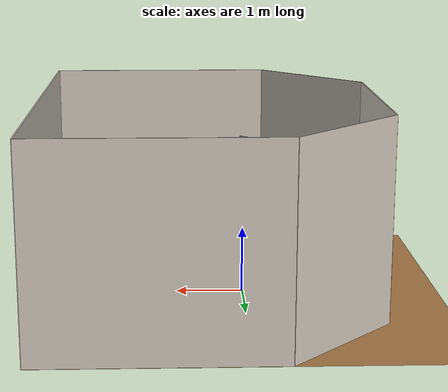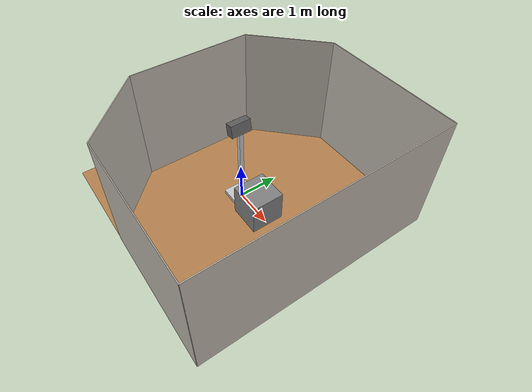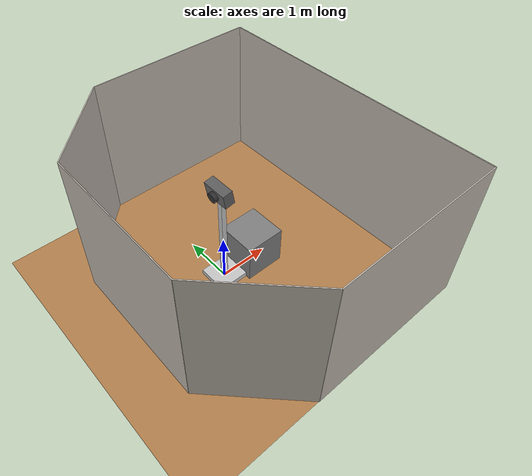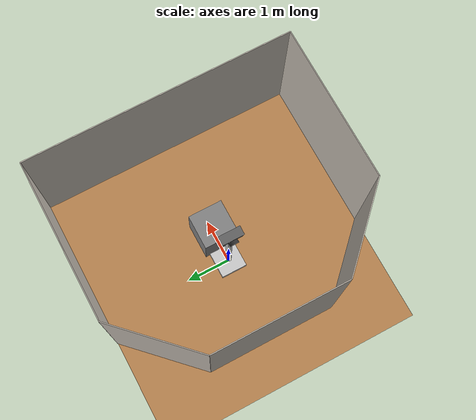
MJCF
<mujoco model="table_arena">
  <asset>
    <texture builtin="gradient" height="256" rgb1=".9 .9 1." rgb2=".2 .3 .4" type="skybox" width="256"/>
    <texture file="../textures/wood-tiles.png" type="2d" name="texplane"/>
    <material name="floorplane" reflectance="0.01" shininess="0.0" specular="0.0" texrepeat="2 2" texture="texplane" texuniform="true"/>
    <!-- ceramic table texture and material-->
    <texture file="../textures/ceramic.png" type="cube" name="tex-ceramic"/>
    <material name="table_ceramic" reflectance="0.0" shininess="0.0" specular="0.2" texrepeat="1 1" texture="tex-ceramic" />
    <!-- steel legs -->
    <texture file="../textures/steel-brushed.png" type="cube" name="tex-steel-brushed"/>
    <material name="table_legs_metal" reflectance="0.8" shininess="0.8" texrepeat="1 1" texture="tex-steel-brushed" />
    <!-- plaster walls -->
    <texture file="../textures/cream-plaster.png" type="2d" name="tex-cream-plaster"/>
    <material name="walls_mat" reflectance="0.0" shininess="0.1" specular="0.1" texrepeat="3 3" texture="tex-cream-plaster" texuniform="true" />
    <!-- added table texture and material for domain randomization -->
    <texture  name="textable" builtin="flat" height="512" width="512" rgb1="0.5 0.5 0.5" rgb2="0.5 0.5 0.5"/>
    <material name="table_mat" texture="textable" />

  </asset>
  <worldbody>
    <!-- Floor -->
    <geom condim="3" material="floorplane" name="floor" pos="0 0 0" size="3 3 .125" type="plane"/>
    <!-- Walls (visual only) -->
    <geom pos="-1.25 2.25 1.5" quat="0.6532815 0.6532815 0.2705981 0.2705981" size="1.06 1.5 0.01" type="box" conaffinity="0" contype="0" group="1" name="wall_leftcorner_visual" material="walls_mat"/>
    <geom pos="-1.25 -2.25 1.5" quat="0.6532815 0.6532815 -0.2705981 -0.2705981" size="1.06 1.5 0.01" type="box" conaffinity="0" contype="0" group="1" name="wall_rightcorner_visual" material="walls_mat"/>
    <geom pos="1.25 3 1.5" quat="0.7071 0.7071 0 0" size="1.75 1.5 0.01" type="box" conaffinity="0" contype="0" group="1" name="wall_left_visual" material="walls_mat"/>
    <geom pos="1.25 -3 1.5" quat="0.7071 -0.7071 0 0" size="1.75 1.5 0.01" type="box" conaffinity="0" contype="0" group="1" name="wall_right_visual" material="walls_mat"/>
    <geom pos="-2 0 1.5" quat="0.5 0.5 0.5 0.5" size="1.5 1.5 0.01" type="box" conaffinity="0" contype="0" group="1" name="wall_rear_visual" material="walls_mat"/>
    <geom pos="3 0 1.5" quat="0.5 0.5 -0.5 -0.5" size="3 1.5 0.01" type="box" conaffinity="0" contype="0" group="1" name="wall_front_visual" material="walls_mat"/>
    <!-- Table body -->
    <body name="table" pos="0.7 0 0.4">
      <geom pos="0 0 0" size="0.4 0.4 0.4" type="box" group="0" name="table_collision" friction="1 0.005 0.0001"/>
      <geom pos="0 0 0" size="0.4 0.4 0.4" type="box" conaffinity="0" contype="0" group="1" name="table_visual" material="table_ceramic"/>
      <site pos="0 0 0.4" name="table_top" size="0.001 0.001 0.001" rgba="0 0 0 0"/>
      <!-- Legs (visual only) -->
      <geom pos="0 0 0" size="0.05 0.1" type="cylinder" conaffinity="0" contype="0" group="1" name="table_leg1_visual" material="table_legs_metal"/>
      <geom pos="0 0 0" size="0.05 0.1" type="cylinder" conaffinity="0" contype="0" group="1" name="table_leg2_visual" material="table_legs_metal"/>
      <geom pos="0 0 0" size="0.05 0.1" type="cylinder" conaffinity="0" contype="0" group="1" name="table_leg3_visual" material="table_legs_metal"/>
      <geom pos="0 0 0" size="0.05 0.1" type="cylinder" conaffinity="0" contype="0" group="1" name="table_leg4_visual" material="table_legs_metal"/>
    </body>

    <!-- Standing cam body -->
    <body name="stand">
      <geom type="box" pos="0.0 0.0 0.05" size="0.3 0.3 0.05" name="stand_floor" rgba="0.78 0.78 0.78 1"/>
      <geom type="box" pos="0.0 0.0 1.1" size="0.05 0.05 1.0" name="stand_pillar" rgba="0.78 0.78 0.78 1"/>
        <body name="cam" pos="0.3507 0.0 0.0" quat="0.9962 0.0 -0.0871 0.0">
            <geom type="box" pos="0.0 0.0 2.25" size="0.1 0.25 0.15" name="cam_body" rgba="0.38 0.38 0.38 1"/>
            <geom type="cylinder" pos="-0.14 0.0 2.25" quat="0.7071 0 0.7071 0" size="0.1 0.04" name="cam_lens" rgba="0.18 0.18 0.18 1"/>
        </body>
    </body>

    <light name="light1" diffuse=".8 .8 .8" dir="0 -.15 -1" directional="false" pos="1 1 4.0" specular="0.3 0.3 0.3" castshadow="false"/>
    <light name="light2" diffuse=".8 .8 .8" dir="0 -.15 -1" directional="false" pos="-3. -3. 4.0" specular="0.3 0.3 0.3" castshadow="false"/>
    <!-- front view -->
    <camera mode="fixed" name="frontview" pos="1.6 0 1.45" quat="0.56 0.43 0.43 0.56"/>
    <!-- bird view -->
    <camera mode="fixed" name="birdview" pos="-0.2 0 3.0" quat="0.7071 0 0 0.7071"/>
    <!-- agent view -->
    <camera mode="fixed" name="agentview" pos="0.5 0 1.35" quat="0.653 0.271 0.271 0.653"/>
    <!-- side view -->
    <camera mode="fixed" name="sideview" pos="-0.05651774593317116 1.2761224129427358 1.4879572214102434" quat="0.009905065491771751 0.006877963156909582 0.5912228352893879 0.806418094001364" />
  </worldbody>
</mujoco>
